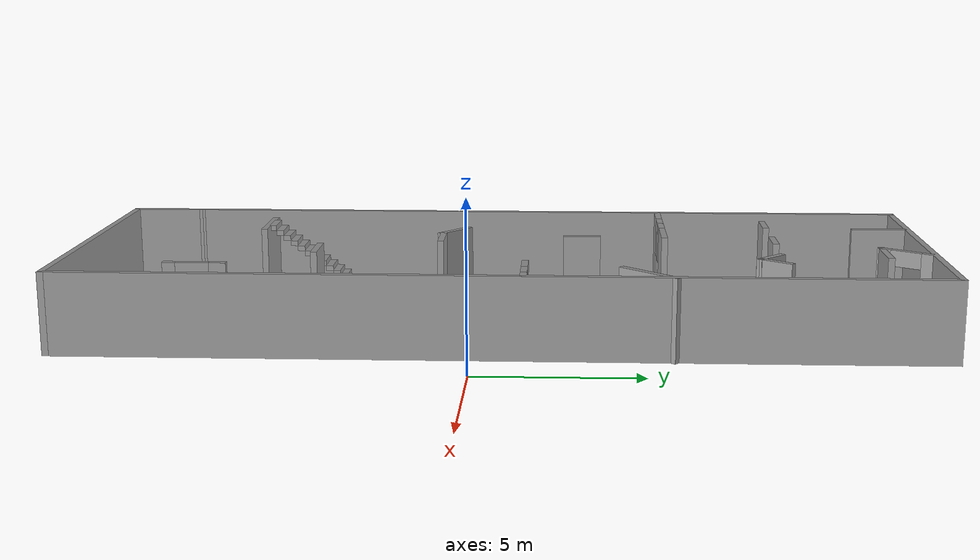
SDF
<?xml version='1.0'?>
<sdf version='1.4'>
  <model name='oa_world'>
    <link name='Stairs_0'>
      <visual name='Stairs_0_Visual_0'>
        <pose>-9.46104 -3.77465 0.083333 0 -0 0</pose>
        <geometry>
          <box>
            <size>1 0.233335 0.166668</size>
          </box>
        </geometry>
        <material>
          <script>
            <uri>file://media/materials/scripts/gazebo.material</uri>
            <name>Gazebo/Grey</name>
          </script>
        </material>
      </visual>
      <collision name='Stairs_0_Collision_0'>
        <geometry>
          <box>
            <size>1 0.233335 0.166668</size>
          </box>
        </geometry>
        <pose>-9.46104 -3.77465 0.083333 0 -0 0</pose>
      </collision>
      <visual name='Stairs_0_Visual_1'>
        <pose>-9.46104 -4.00798 0.25 0 -0 0</pose>
        <geometry>
          <box>
            <size>1 0.233335 0.166668</size>
          </box>
        </geometry>
        <material>
          <script>
            <uri>file://media/materials/scripts/gazebo.material</uri>
            <name>Gazebo/Grey</name>
          </script>
        </material>
      </visual>
      <collision name='Stairs_0_Collision_1'>
        <geometry>
          <box>
            <size>1 0.233335 0.166668</size>
          </box>
        </geometry>
        <pose>-9.46104 -4.00798 0.25 0 -0 0</pose>
      </collision>
      <visual name='Stairs_0_Visual_2'>
        <pose>-9.46104 -4.24131 0.416667 0 -0 0</pose>
        <geometry>
          <box>
            <size>1 0.233335 0.166668</size>
          </box>
        </geometry>
        <material>
          <script>
            <uri>file://media/materials/scripts/gazebo.material</uri>
            <name>Gazebo/Grey</name>
          </script>
        </material>
      </visual>
      <collision name='Stairs_0_Collision_2'>
        <geometry>
          <box>
            <size>1 0.233335 0.166668</size>
          </box>
        </geometry>
        <pose>-9.46104 -4.24131 0.416667 0 -0 0</pose>
      </collision>
      <visual name='Stairs_0_Visual_3'>
        <pose>-9.46104 -4.47464 0.583333 0 -0 0</pose>
        <geometry>
          <box>
            <size>1 0.233335 0.166668</size>
          </box>
        </geometry>
        <material>
          <script>
            <uri>file://media/materials/scripts/gazebo.material</uri>
            <name>Gazebo/Grey</name>
          </script>
        </material>
      </visual>
      <collision name='Stairs_0_Collision_3'>
        <geometry>
          <box>
            <size>1 0.233335 0.166668</size>
          </box>
        </geometry>
        <pose>-9.46104 -4.47464 0.583333 0 -0 0</pose>
      </collision>
      <visual name='Stairs_0_Visual_4'>
        <pose>-9.46104 -4.70798 0.75 0 -0 0</pose>
        <geometry>
          <box>
            <size>1 0.233335 0.166668</size>
          </box>
        </geometry>
        <material>
          <script>
            <uri>file://media/materials/scripts/gazebo.material</uri>
            <name>Gazebo/Grey</name>
          </script>
        </material>
      </visual>
      <collision name='Stairs_0_Collision_4'>
        <geometry>
          <box>
            <size>1 0.233335 0.166668</size>
          </box>
        </geometry>
        <pose>-9.46104 -4.70798 0.75 0 -0 0</pose>
      </collision>
      <visual name='Stairs_0_Visual_5'>
        <pose>-9.46104 -4.94131 0.916667 0 -0 0</pose>
        <geometry>
          <box>
            <size>1 0.233335 0.166668</size>
          </box>
        </geometry>
        <material>
          <script>
            <uri>file://media/materials/scripts/gazebo.material</uri>
            <name>Gazebo/Grey</name>
          </script>
        </material>
      </visual>
      <collision name='Stairs_0_Collision_5'>
        <geometry>
          <box>
            <size>1 0.233335 0.166668</size>
          </box>
        </geometry>
        <pose>-9.46104 -4.94131 0.916667 0 -0 0</pose>
      </collision>
      <visual name='Stairs_0_Visual_6'>
        <pose>-9.46104 -5.17464 1.08333 0 -0 0</pose>
        <geometry>
          <box>
            <size>1 0.233335 0.166668</size>
          </box>
        </geometry>
        <material>
          <script>
            <uri>file://media/materials/scripts/gazebo.material</uri>
            <name>Gazebo/Grey</name>
          </script>
        </material>
      </visual>
      <collision name='Stairs_0_Collision_6'>
        <geometry>
          <box>
            <size>1 0.233335 0.166668</size>
          </box>
        </geometry>
        <pose>-9.46104 -5.17464 1.08333 0 -0 0</pose>
      </collision>
      <visual name='Stairs_0_Visual_7'>
        <pose>-9.46104 -5.40798 1.25 0 -0 0</pose>
        <geometry>
          <box>
            <size>1 0.233335 0.166668</size>
          </box>
        </geometry>
        <material>
          <script>
            <uri>file://media/materials/scripts/gazebo.material</uri>
            <name>Gazebo/Grey</name>
          </script>
        </material>
      </visual>
      <collision name='Stairs_0_Collision_7'>
        <geometry>
          <box>
            <size>1 0.233335 0.166668</size>
          </box>
        </geometry>
        <pose>-9.46104 -5.40798 1.25 0 -0 0</pose>
      </collision>
      <visual name='Stairs_0_Visual_8'>
        <pose>-9.46104 -5.64131 1.41667 0 -0 0</pose>
        <geometry>
          <box>
            <size>1 0.233335 0.166668</size>
          </box>
        </geometry>
        <material>
          <script>
            <uri>file://media/materials/scripts/gazebo.material</uri>
            <name>Gazebo/Grey</name>
          </script>
        </material>
      </visual>
      <collision name='Stairs_0_Collision_8'>
        <geometry>
          <box>
            <size>1 0.233335 0.166668</size>
          </box>
        </geometry>
        <pose>-9.46104 -5.64131 1.41667 0 -0 0</pose>
      </collision>
      <visual name='Stairs_0_Visual_9'>
        <pose>-9.46104 -5.87465 1.58333 0 -0 0</pose>
        <geometry>
          <box>
            <size>1 0.233335 0.166668</size>
          </box>
        </geometry>
        <material>
          <script>
            <uri>file://media/materials/scripts/gazebo.material</uri>
            <name>Gazebo/Grey</name>
          </script>
        </material>
      </visual>
      <collision name='Stairs_0_Collision_9'>
        <geometry>
          <box>
            <size>1 0.233335 0.166668</size>
          </box>
        </geometry>
        <pose>-9.46104 -5.87465 1.58333 0 -0 0</pose>
      </collision>
      <visual name='Stairs_0_Visual_10'>
        <pose>-9.46104 -6.10798 1.75 0 -0 0</pose>
        <geometry>
          <box>
            <size>1 0.233335 0.166668</size>
          </box>
        </geometry>
        <material>
          <script>
            <uri>file://media/materials/scripts/gazebo.material</uri>
            <name>Gazebo/Grey</name>
          </script>
        </material>
      </visual>
      <collision name='Stairs_0_Collision_10'>
        <geometry>
          <box>
            <size>1 0.233335 0.166668</size>
          </box>
        </geometry>
        <pose>-9.46104 -6.10798 1.75 0 -0 0</pose>
      </collision>
      <visual name='Stairs_0_Visual_11'>
        <pose>-9.46104 -6.34131 1.91667 0 -0 0</pose>
        <geometry>
          <box>
            <size>1 0.233335 0.166668</size>
          </box>
        </geometry>
        <material>
          <script>
            <uri>file://media/materials/scripts/gazebo.material</uri>
            <name>Gazebo/Grey</name>
          </script>
        </material>
      </visual>
      <collision name='Stairs_0_Collision_11'>
        <geometry>
          <box>
            <size>1 0.233335 0.166668</size>
          </box>
        </geometry>
        <pose>-9.46104 -6.34131 1.91667 0 -0 0</pose>
      </collision>
      <visual name='Stairs_0_Visual_12'>
        <pose>-9.46104 -6.57465 2.08333 0 -0 0</pose>
        <geometry>
          <box>
            <size>1 0.233335 0.166668</size>
          </box>
        </geometry>
        <material>
          <script>
            <uri>file://media/materials/scripts/gazebo.material</uri>
            <name>Gazebo/Grey</name>
          </script>
        </material>
      </visual>
      <collision name='Stairs_0_Collision_12'>
        <geometry>
          <box>
            <size>1 0.233335 0.166668</size>
          </box>
        </geometry>
        <pose>-9.46104 -6.57465 2.08333 0 -0 0</pose>
      </collision>
      <visual name='Stairs_0_Visual_13'>
        <pose>-9.46104 -6.80798 2.25 0 -0 0</pose>
        <geometry>
          <box>
            <size>1 0.233335 0.166668</size>
          </box>
        </geometry>
        <material>
          <script>
            <uri>file://media/materials/scripts/gazebo.material</uri>
            <name>Gazebo/Grey</name>
          </script>
        </material>
      </visual>
      <collision name='Stairs_0_Collision_13'>
        <geometry>
          <box>
            <size>1 0.233335 0.166668</size>
          </box>
        </geometry>
        <pose>-9.46104 -6.80798 2.25 0 -0 0</pose>
      </collision>
      <visual name='Stairs_0_Visual_14'>
        <pose>-9.46104 -7.04131 2.41667 0 -0 0</pose>
        <geometry>
          <box>
            <size>1 0.233335 0.166668</size>
          </box>
        </geometry>
        <material>
          <script>
            <uri>file://media/materials/scripts/gazebo.material</uri>
            <name>Gazebo/Grey</name>
          </script>
        </material>
      </visual>
      <collision name='Stairs_0_Collision_14'>
        <geometry>
          <box>
            <size>1 0.233335 0.166668</size>
          </box>
        </geometry>
        <pose>-9.46104 -7.04131 2.41667 0 -0 0</pose>
      </collision>
    </link>
    <link name='Wall_12'>
      <collision name='Wall_12_Collision'>
        <geometry>
          <box>
            <size>24.1497 0.2 2.5</size>
          </box>
        </geometry>
        <pose>0 0 1.25 0 -0 0</pose>
      </collision>
      <visual name='Wall_12_Visual'>
        <pose>0 0 1.25 0 -0 0</pose>
        <geometry>
          <box>
            <size>24.1497 0.2 2.5</size>
          </box>
        </geometry>
        <material>
          <script>
            <uri>file://media/materials/scripts/gazebo.material</uri>
            <name>Gazebo/Grey</name>
          </script>
        </material>
      </visual>
      <velocity_decay>
        <linear>0</linear>
        <angular>0</angular>
      </velocity_decay>
      <pose>-11.9668 1.88773 0 0 -0 1.5708</pose>
    </link>
    <link name='Wall_13'>
      <collision name='Wall_13_Collision'>
        <geometry>
          <box>
            <size>10.4757 0.2 2.5</size>
          </box>
        </geometry>
        <pose>0 0 1.25 0 -0 0</pose>
      </collision>
      <visual name='Wall_13_Visual'>
        <pose>0 0 1.25 0 -0 0</pose>
        <geometry>
          <box>
            <size>10.4757 0.2 2.5</size>
          </box>
        </geometry>
        <material>
          <script>
            <uri>file://media/materials/scripts/gazebo.material</uri>
            <name>Gazebo/Grey</name>
          </script>
        </material>
      </visual>
      <velocity_decay>
        <linear>0</linear>
        <angular>0</angular>
      </velocity_decay>
      <pose>-6.82891 13.8626 0 0 -0 0</pose>
    </link>
    <link name='Wall_14'>
      <collision name='Wall_14_Collision'>
        <geometry>
          <box>
            <size>26.4556 0.2 2.5</size>
          </box>
        </geometry>
        <pose>0 0 1.25 0 -0 0</pose>
      </collision>
      <visual name='Wall_14_Visual'>
        <pose>0 0 1.25 0 -0 0</pose>
        <geometry>
          <box>
            <size>26.4556 0.2 2.5</size>
          </box>
        </geometry>
        <material>
          <script>
            <uri>file://media/materials/scripts/gazebo.material</uri>
            <name>Gazebo/Grey</name>
          </script>
        </material>
      </visual>
      <velocity_decay>
        <linear>0</linear>
        <angular>0</angular>
      </velocity_decay>
      <pose>-1.69105 0.734798 0 0 0 -1.5708</pose>
    </link>
    <link name='Wall_15'>
      <collision name='Wall_15_Collision'>
        <geometry>
          <box>
            <size>10.4808 0.2 2.5</size>
          </box>
        </geometry>
        <pose>0 0 1.25 0 -0 0</pose>
      </collision>
      <visual name='Wall_15_Visual'>
        <pose>0 0 1.25 0 -0 0</pose>
        <geometry>
          <box>
            <size>10.4808 0.2 2.5</size>
          </box>
        </geometry>
        <material>
          <script>
            <uri>file://media/materials/scripts/gazebo.material</uri>
            <name>Gazebo/Grey</name>
          </script>
        </material>
      </visual>
      <velocity_decay>
        <linear>0</linear>
        <angular>0</angular>
      </velocity_decay>
      <pose>-6.83143 -12.393 0 0 -0 3.14159</pose>
    </link>
    <link name='Wall_16'>
      <collision name='Wall_16_Collision'>
        <geometry>
          <box>
            <size>2.50587 0.2 2.5</size>
          </box>
        </geometry>
        <pose>0 0 1.25 0 -0 0</pose>
      </collision>
      <visual name='Wall_16_Visual'>
        <pose>0 0 1.25 0 -0 0</pose>
        <geometry>
          <box>
            <size>2.50587 0.2 2.5</size>
          </box>
        </geometry>
        <material>
          <script>
            <uri>file://media/materials/scripts/gazebo.material</uri>
            <name>Gazebo/Grey</name>
          </script>
        </material>
      </visual>
      <velocity_decay>
        <linear>0</linear>
        <angular>0</angular>
      </velocity_decay>
      <pose>-11.9693 -11.2401 0 0 -0 1.56861</pose>
    </link>
    <link name='Wall_18'>
      <collision name='Wall_18_Collision'>
        <geometry>
          <box>
            <size>2.15777 0.2 2.5</size>
          </box>
        </geometry>
        <pose>0 0 1.25 0 -0 0</pose>
      </collision>
      <visual name='Wall_18_Visual'>
        <pose>0 0 1.25 0 -0 0</pose>
        <geometry>
          <box>
            <size>2.15777 0.2 2.5</size>
          </box>
        </geometry>
        <material>
          <script>
            <uri>file://media/materials/scripts/gazebo.material</uri>
            <name>Gazebo/Grey</name>
          </script>
        </material>
      </visual>
      <velocity_decay>
        <linear>0</linear>
        <angular>0</angular>
      </velocity_decay>
      <pose>-9.43715 -7.20257 0 0 -0 0</pose>
    </link>
    <link name='Wall_20'>
      <collision name='Wall_20_Collision'>
        <geometry>
          <box>
            <size>1.48479 0.2 2.5</size>
          </box>
        </geometry>
        <pose>0 0 1.25 0 -0 0</pose>
      </collision>
      <visual name='Wall_20_Visual'>
        <pose>0 0 1.25 0 -0 0</pose>
        <geometry>
          <box>
            <size>1.48479 0.2 2.5</size>
          </box>
        </geometry>
        <material>
          <script>
            <uri>file://media/materials/scripts/gazebo.material</uri>
            <name>Gazebo/Grey</name>
          </script>
        </material>
      </visual>
      <velocity_decay>
        <linear>0</linear>
        <angular>0</angular>
      </velocity_decay>
      <pose>-7.32642 -1.26806 0 0 -0 0</pose>
    </link>
    <link name='Wall_23'>
      <collision name='Wall_23_Collision'>
        <geometry>
          <box>
            <size>1.42361 0.2 2.5</size>
          </box>
        </geometry>
        <pose>0 0 1.25 0 -0 0</pose>
      </collision>
      <visual name='Wall_23_Visual'>
        <pose>0 0 1.25 0 -0 0</pose>
        <geometry>
          <box>
            <size>1.42361 0.2 2.5</size>
          </box>
        </geometry>
        <material>
          <script>
            <uri>file://media/materials/scripts/gazebo.material</uri>
            <name>Gazebo/Grey</name>
          </script>
        </material>
      </visual>
      <velocity_decay>
        <linear>0</linear>
        <angular>0</angular>
      </velocity_decay>
      <pose>-5.46042 -5.00007 0 0 -0 0</pose>
    </link>
    <link name='Wall_25'>
      <pose>-2.76848 1.48506 0 0 -0 0</pose>
      <visual name='Wall_25_Visual_0'>
        <pose>-0.637631 0 1.25 0 -0 0</pose>
        <geometry>
          <box>
            <size>0.882508 0.2 2.5</size>
          </box>
        </geometry>
        <material>
          <script>
            <uri>file://media/materials/scripts/gazebo.material</uri>
            <name>Gazebo/Grey</name>
          </script>
        </material>
      </visual>
      <collision name='Wall_25_Collision_0'>
        <geometry>
          <box>
            <size>0.882508 0.2 2.5</size>
          </box>
        </geometry>
        <pose>-0.637631 0 1.25 0 -0 0</pose>
      </collision>
      <visual name='Wall_25_Visual_1'>
        <pose>0.441254 0 0.25 0 -0 0</pose>
        <geometry>
          <box>
            <size>1.27526 0.2 0.5</size>
          </box>
        </geometry>
        <material>
          <script>
            <uri>file://media/materials/scripts/gazebo.material</uri>
            <name>Gazebo/Grey</name>
          </script>
        </material>
      </visual>
      <collision name='Wall_25_Collision_1'>
        <geometry>
          <box>
            <size>1.27526 0.2 0.5</size>
          </box>
        </geometry>
        <pose>0.441254 0 0.25 0 -0 0</pose>
      </collision>
      <visual name='Wall_25_Visual_2'>
        <pose>0.841254 0 1.5 0 -0 0</pose>
        <geometry>
          <box>
            <size>0.475262 0.2 2</size>
          </box>
        </geometry>
        <material>
          <script>
            <uri>file://media/materials/scripts/gazebo.material</uri>
            <name>Gazebo/Grey</name>
          </script>
        </material>
      </visual>
      <collision name='Wall_25_Collision_2'>
        <geometry>
          <box>
            <size>0.475262 0.2 2</size>
          </box>
        </geometry>
        <pose>0.841254 0 1.5 0 -0 0</pose>
      </collision>
      <visual name='Wall_25_Visual_3'>
        <pose>0.203623 0 1.9 0 -0 0</pose>
        <geometry>
          <box>
            <size>0.8 0.2 1.2</size>
          </box>
        </geometry>
        <material>
          <script>
            <uri>file://media/materials/scripts/gazebo.material</uri>
            <name>Gazebo/Grey</name>
          </script>
        </material>
      </visual>
      <collision name='Wall_25_Collision_3'>
        <geometry>
          <box>
            <size>0.8 0.2 1.2</size>
          </box>
        </geometry>
        <pose>0.203623 0 1.9 0 -0 0</pose>
      </collision>
    </link>
    <link name='Wall_27'>
      <pose>-9.68187 5.82887 0 0 -0 0</pose>
      <visual name='Wall_27_Visual_0'>
        <pose>-1.6985 0 1.25 0 -0 0</pose>
        <geometry>
          <box>
            <size>1.208 0.2 2.5</size>
          </box>
        </geometry>
        <material>
          <script>
            <uri>file://media/materials/scripts/gazebo.material</uri>
            <name>Gazebo/Grey</name>
          </script>
        </material>
      </visual>
      <collision name='Wall_27_Collision_0'>
        <geometry>
          <box>
            <size>1.208 0.2 2.5</size>
          </box>
        </geometry>
        <pose>-1.6985 0 1.25 0 -0 0</pose>
      </collision>
      <visual name='Wall_27_Visual_1'>
        <pose>0.604 0 0.25 0 -0 0</pose>
        <geometry>
          <box>
            <size>3.39699 0.2 0.5</size>
          </box>
        </geometry>
        <material>
          <script>
            <uri>file://media/materials/scripts/gazebo.material</uri>
            <name>Gazebo/Grey</name>
          </script>
        </material>
      </visual>
      <collision name='Wall_27_Collision_1'>
        <geometry>
          <box>
            <size>3.39699 0.2 0.5</size>
          </box>
        </geometry>
        <pose>0.604 0 0.25 0 -0 0</pose>
      </collision>
      <visual name='Wall_27_Visual_2'>
        <pose>-0.27211 0 1.5 0 -0 0</pose>
        <geometry>
          <box>
            <size>0.044769 0.2 2</size>
          </box>
        </geometry>
        <material>
          <script>
            <uri>file://media/materials/scripts/gazebo.material</uri>
            <name>Gazebo/Grey</name>
          </script>
        </material>
      </visual>
      <collision name='Wall_27_Collision_2'>
        <geometry>
          <box>
            <size>0.044769 0.2 2</size>
          </box>
        </geometry>
        <pose>-0.27211 0 1.5 0 -0 0</pose>
      </collision>
      <visual name='Wall_27_Visual_3'>
        <pose>1.42639 0 1.5 0 -0 0</pose>
        <geometry>
          <box>
            <size>1.75222 0.2 2</size>
          </box>
        </geometry>
        <material>
          <script>
            <uri>file://media/materials/scripts/gazebo.material</uri>
            <name>Gazebo/Grey</name>
          </script>
        </material>
      </visual>
      <collision name='Wall_27_Collision_3'>
        <geometry>
          <box>
            <size>1.75222 0.2 2</size>
          </box>
        </geometry>
        <pose>1.42639 0 1.5 0 -0 0</pose>
      </collision>
      <visual name='Wall_27_Visual_4'>
        <pose>-0.694495 0 1.9 0 -0 0</pose>
        <geometry>
          <box>
            <size>0.8 0.2 1.2</size>
          </box>
        </geometry>
        <material>
          <script>
            <uri>file://media/materials/scripts/gazebo.material</uri>
            <name>Gazebo/Grey</name>
          </script>
        </material>
      </visual>
      <collision name='Wall_27_Collision_4'>
        <geometry>
          <box>
            <size>0.8 0.2 1.2</size>
          </box>
        </geometry>
        <pose>-0.694495 0 1.9 0 -0 0</pose>
      </collision>
      <visual name='Wall_27_Visual_5'>
        <pose>0.150274 0 1.9 0 -0 0</pose>
        <geometry>
          <box>
            <size>0.8 0.2 1.2</size>
          </box>
        </geometry>
        <material>
          <script>
            <uri>file://media/materials/scripts/gazebo.material</uri>
            <name>Gazebo/Grey</name>
          </script>
        </material>
      </visual>
      <collision name='Wall_27_Collision_5'>
        <geometry>
          <box>
            <size>0.8 0.2 1.2</size>
          </box>
        </geometry>
        <pose>0.150274 0 1.9 0 -0 0</pose>
      </collision>
    </link>
    <link name='Wall_29'>
      <collision name='Wall_29_Collision'>
        <geometry>
          <box>
            <size>1.24007 0.2 2.5</size>
          </box>
        </geometry>
        <pose>0 0 1.25 0 -0 0</pose>
      </collision>
      <visual name='Wall_29_Visual'>
        <pose>0 0 1.25 0 -0 0</pose>
        <geometry>
          <box>
            <size>1.24007 0.2 2.5</size>
          </box>
        </geometry>
        <material>
          <script>
            <uri>file://media/materials/scripts/gazebo.material</uri>
            <name>Gazebo/Grey</name>
          </script>
        </material>
      </visual>
      <velocity_decay>
        <linear>0</linear>
        <angular>0</angular>
      </velocity_decay>
      <pose>-9.83482 9.25497 0 0 -0 0</pose>
    </link>
    <link name='Wall_31'>
      <collision name='Wall_31_Collision'>
        <geometry>
          <box>
            <size>1.17889 0.2 2.5</size>
          </box>
        </geometry>
        <pose>0 0 1.25 0 -0 0</pose>
      </collision>
      <visual name='Wall_31_Visual'>
        <pose>0 0 1.25 0 -0 0</pose>
        <geometry>
          <box>
            <size>1.17889 0.2 2.5</size>
          </box>
        </geometry>
        <material>
          <script>
            <uri>file://media/materials/scripts/gazebo.material</uri>
            <name>Gazebo/Grey</name>
          </script>
        </material>
      </visual>
      <velocity_decay>
        <linear>0</linear>
        <angular>0</angular>
      </velocity_decay>
      <pose>-7.17347 9.25497 0 0 -0 0</pose>
    </link>
    <link name='Wall_33'>
      <collision name='Wall_33_Collision'>
        <geometry>
          <box>
            <size>1.15175 0.2 2.5</size>
          </box>
        </geometry>
        <pose>0 0 1.25 0 -0 0</pose>
      </collision>
      <visual name='Wall_33_Visual'>
        <pose>0 0 1.25 0 -0 0</pose>
        <geometry>
          <box>
            <size>1.15175 0.2 2.5</size>
          </box>
        </geometry>
        <material>
          <script>
            <uri>file://media/materials/scripts/gazebo.material</uri>
            <name>Gazebo/Grey</name>
          </script>
        </material>
      </visual>
      <velocity_decay>
        <linear>0</linear>
        <angular>0</angular>
      </velocity_decay>
      <pose>-4.63448 8.8573 0 0 0 -0.785398</pose>
    </link>
    <link name='Wall_34'>
      <collision name='Wall_34_Collision'>
        <geometry>
          <box>
            <size>1.20343 0.2 2.5</size>
          </box>
        </geometry>
        <pose>0 0 1.25 0 -0 0</pose>
      </collision>
      <visual name='Wall_34_Visual'>
        <pose>0 0 1.25 0 -0 0</pose>
        <geometry>
          <box>
            <size>1.20343 0.2 2.5</size>
          </box>
        </geometry>
        <material>
          <script>
            <uri>file://media/materials/scripts/gazebo.material</uri>
            <name>Gazebo/Grey</name>
          </script>
        </material>
      </visual>
      <velocity_decay>
        <linear>0</linear>
        <angular>0</angular>
      </velocity_decay>
      <pose>-3.99209 8.91848 0 0 -0 0.915101</pose>
    </link>
    <link name='Wall_36'>
      <collision name='Wall_36_Collision'>
        <geometry>
          <box>
            <size>1.46127 0.2 2.5</size>
          </box>
        </geometry>
        <pose>0 0 1.25 0 -0 0</pose>
      </collision>
      <visual name='Wall_36_Visual'>
        <pose>0 0 1.25 0 -0 0</pose>
        <geometry>
          <box>
            <size>1.46127 0.2 2.5</size>
          </box>
        </geometry>
        <material>
          <script>
            <uri>file://media/materials/scripts/gazebo.material</uri>
            <name>Gazebo/Grey</name>
          </script>
        </material>
      </visual>
      <velocity_decay>
        <linear>0</linear>
        <angular>0</angular>
      </velocity_decay>
      <pose>-8.45826 -0.931571 0 0 -0 2.45928</pose>
    </link>
    <link name='Wall_38'>
      <collision name='Wall_38_Collision'>
        <geometry>
          <box>
            <size>1.17889 0.2 2.5</size>
          </box>
        </geometry>
        <pose>0 0 1.25 0 -0 0</pose>
      </collision>
      <visual name='Wall_38_Visual'>
        <pose>0 0 1.25 0 -0 0</pose>
        <geometry>
          <box>
            <size>1.17889 0.2 2.5</size>
          </box>
        </geometry>
        <material>
          <script>
            <uri>file://media/materials/scripts/gazebo.material</uri>
            <name>Gazebo/Grey</name>
          </script>
        </material>
      </visual>
      <velocity_decay>
        <linear>0</linear>
        <angular>0</angular>
      </velocity_decay>
      <pose>-7.60173 3.19811 0 0 0 -1.5708</pose>
    </link>
    <link name='Wall_40'>
      <collision name='Wall_40_Collision'>
        <geometry>
          <box>
            <size>2.20327 0.2 2.5</size>
          </box>
        </geometry>
        <pose>0 0 1.25 0 -0 0</pose>
      </collision>
      <visual name='Wall_40_Visual'>
        <pose>0 0 1.25 0 -0 0</pose>
        <geometry>
          <box>
            <size>2.20327 0.2 2.5</size>
          </box>
        </geometry>
        <material>
          <script>
            <uri>file://media/materials/scripts/gazebo.material</uri>
            <name>Gazebo/Grey</name>
          </script>
        </material>
      </visual>
      <velocity_decay>
        <linear>0</linear>
        <angular>0</angular>
      </velocity_decay>
      <pose>-2.30057 5.10899 0 0 0 -2.32763</pose>
    </link>
    <link name='Wall_42'>
      <pose>-3.15014 -8.28181 0 0 -0 1.5708</pose>
      <visual name='Wall_42_Visual_0'>
        <pose>-0.755086 0 1.25 0 -0 0</pose>
        <geometry>
          <box>
            <size>0.388957 0.2 2.5</size>
          </box>
        </geometry>
        <material>
          <script>
            <uri>file://media/materials/scripts/gazebo.material</uri>
            <name>Gazebo/Grey</name>
          </script>
        </material>
      </visual>
      <collision name='Wall_42_Collision_0'>
        <geometry>
          <box>
            <size>0.388957 0.2 2.5</size>
          </box>
        </geometry>
        <pose>-0.755086 0 1.25 0 -0 0</pose>
      </collision>
      <visual name='Wall_42_Visual_1'>
        <pose>0.694479 0 1.25 0 -0 0</pose>
        <geometry>
          <box>
            <size>0.510173 0.2 2.5</size>
          </box>
        </geometry>
        <material>
          <script>
            <uri>file://media/materials/scripts/gazebo.material</uri>
            <name>Gazebo/Grey</name>
          </script>
        </material>
      </visual>
      <collision name='Wall_42_Collision_1'>
        <geometry>
          <box>
            <size>0.510173 0.2 2.5</size>
          </box>
        </geometry>
        <pose>0.694479 0 1.25 0 -0 0</pose>
      </collision>
      <visual name='Wall_42_Visual_2'>
        <pose>-0.060608 0 2.25 0 -0 0</pose>
        <geometry>
          <box>
            <size>1 0.2 0.5</size>
          </box>
        </geometry>
        <material>
          <script>
            <uri>file://media/materials/scripts/gazebo.material</uri>
            <name>Gazebo/Grey</name>
          </script>
        </material>
      </visual>
      <collision name='Wall_42_Collision_2'>
        <geometry>
          <box>
            <size>1 0.2 0.5</size>
          </box>
        </geometry>
        <pose>-0.060608 0 2.25 0 -0 0</pose>
      </collision>
    </link>
    <link name='Wall_44'>
      <collision name='Wall_44_Collision'>
        <geometry>
          <box>
            <size>1.91305 0.2 2.5</size>
          </box>
        </geometry>
        <pose>0 0 1.25 0 -0 0</pose>
      </collision>
      <visual name='Wall_44_Visual'>
        <pose>0 0 1.25 0 -0 0</pose>
        <geometry>
          <box>
            <size>1.91305 0.2 2.5</size>
          </box>
        </geometry>
        <material>
          <script>
            <uri>file://media/materials/scripts/gazebo.material</uri>
            <name>Gazebo/Grey</name>
          </script>
        </material>
      </visual>
      <velocity_decay>
        <linear>0</linear>
        <angular>0</angular>
      </velocity_decay>
      <pose>-9.1915 12.9875 0 0 0 -1.5708</pose>
    </link>
    <link name='Wall_46'>
      <pose>-5.60163 13.1169 0 0 0 -2.18546</pose>
      <visual name='Wall_46_Visual_0'>
        <pose>-0.713274 0 1.25 0 -0 0</pose>
        <geometry>
          <box>
            <size>0.457101 0.2 2.5</size>
          </box>
        </geometry>
        <material>
          <script>
            <uri>file://media/materials/scripts/gazebo.material</uri>
            <name>Gazebo/Grey</name>
          </script>
        </material>
      </visual>
      <collision name='Wall_46_Collision_0'>
        <geometry>
          <box>
            <size>0.457101 0.2 2.5</size>
          </box>
        </geometry>
        <pose>-0.713274 0 1.25 0 -0 0</pose>
      </collision>
      <visual name='Wall_46_Visual_1'>
        <pose>0.728551 0 1.25 0 -0 0</pose>
        <geometry>
          <box>
            <size>0.426549 0.2 2.5</size>
          </box>
        </geometry>
        <material>
          <script>
            <uri>file://media/materials/scripts/gazebo.material</uri>
            <name>Gazebo/Grey</name>
          </script>
        </material>
      </visual>
      <collision name='Wall_46_Collision_1'>
        <geometry>
          <box>
            <size>0.426549 0.2 2.5</size>
          </box>
        </geometry>
        <pose>0.728551 0 1.25 0 -0 0</pose>
      </collision>
      <visual name='Wall_46_Visual_2'>
        <pose>0.015276 0 2.25 0 -0 0</pose>
        <geometry>
          <box>
            <size>1 0.2 0.5</size>
          </box>
        </geometry>
        <material>
          <script>
            <uri>file://media/materials/scripts/gazebo.material</uri>
            <name>Gazebo/Grey</name>
          </script>
        </material>
      </visual>
      <collision name='Wall_46_Collision_2'>
        <geometry>
          <box>
            <size>1 0.2 0.5</size>
          </box>
        </geometry>
        <pose>0.015276 0 2.25 0 -0 0</pose>
      </collision>
    </link>
    <link name='Wall_47'>
      <collision name='Wall_47_Collision'>
        <geometry>
          <box>
            <size>1.6564 0.2 2.5</size>
          </box>
        </geometry>
        <pose>0 0 1.25 0 -0 0</pose>
      </collision>
      <visual name='Wall_47_Visual'>
        <pose>0 0 1.25 0 -0 0</pose>
        <geometry>
          <box>
            <size>1.6564 0.2 2.5</size>
          </box>
        </geometry>
        <material>
          <script>
            <uri>file://media/materials/scripts/gazebo.material</uri>
            <name>Gazebo/Grey</name>
          </script>
        </material>
      </visual>
      <velocity_decay>
        <linear>0</linear>
        <angular>0</angular>
      </velocity_decay>
      <pose>-5.3589 12.4292 0 0 -0 0</pose>
    </link>
    <static>1</static>
  </model>
</sdf>
